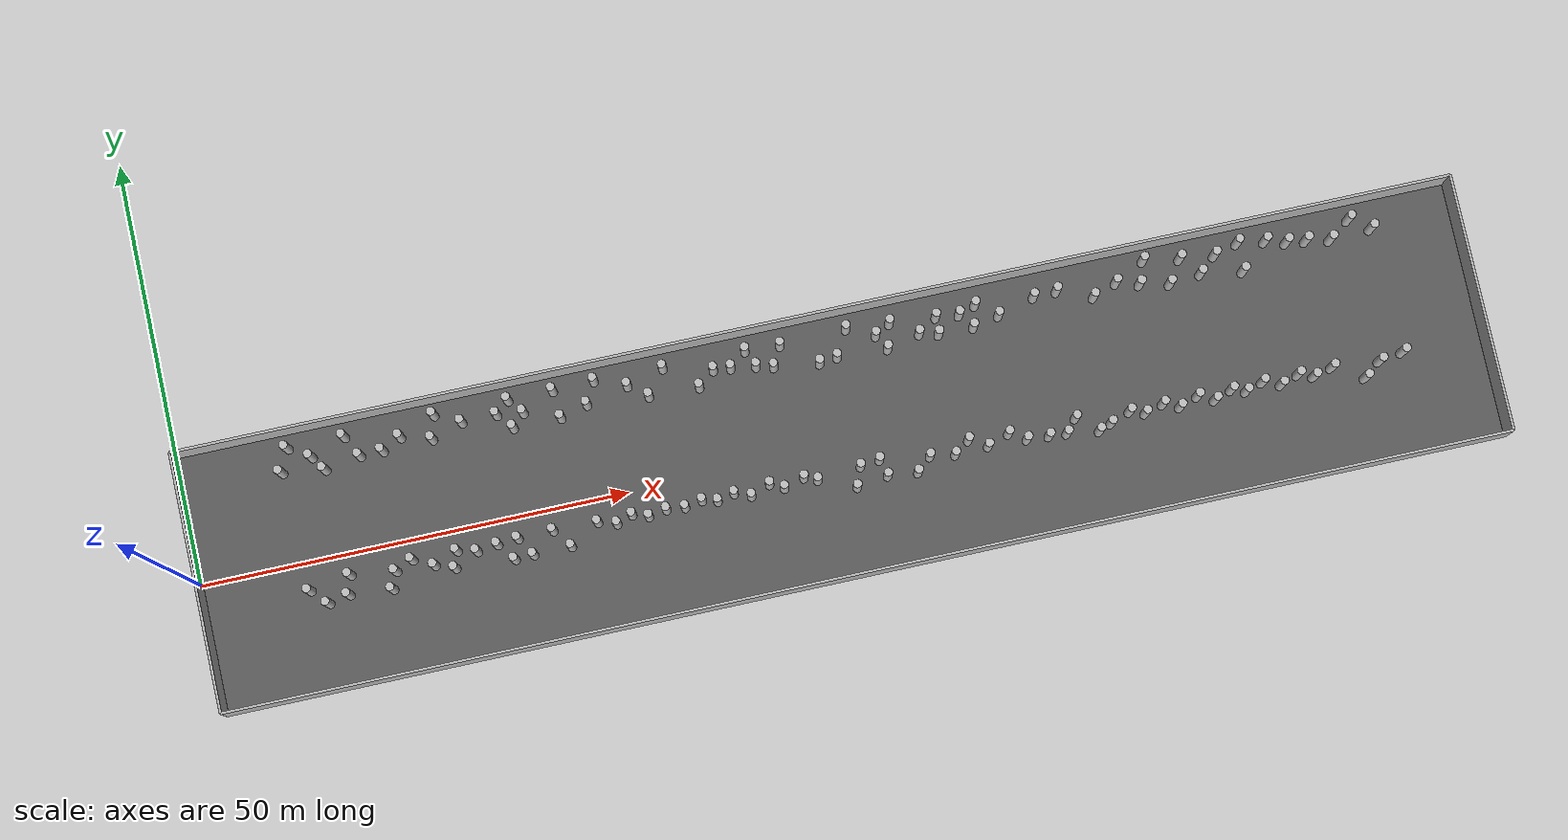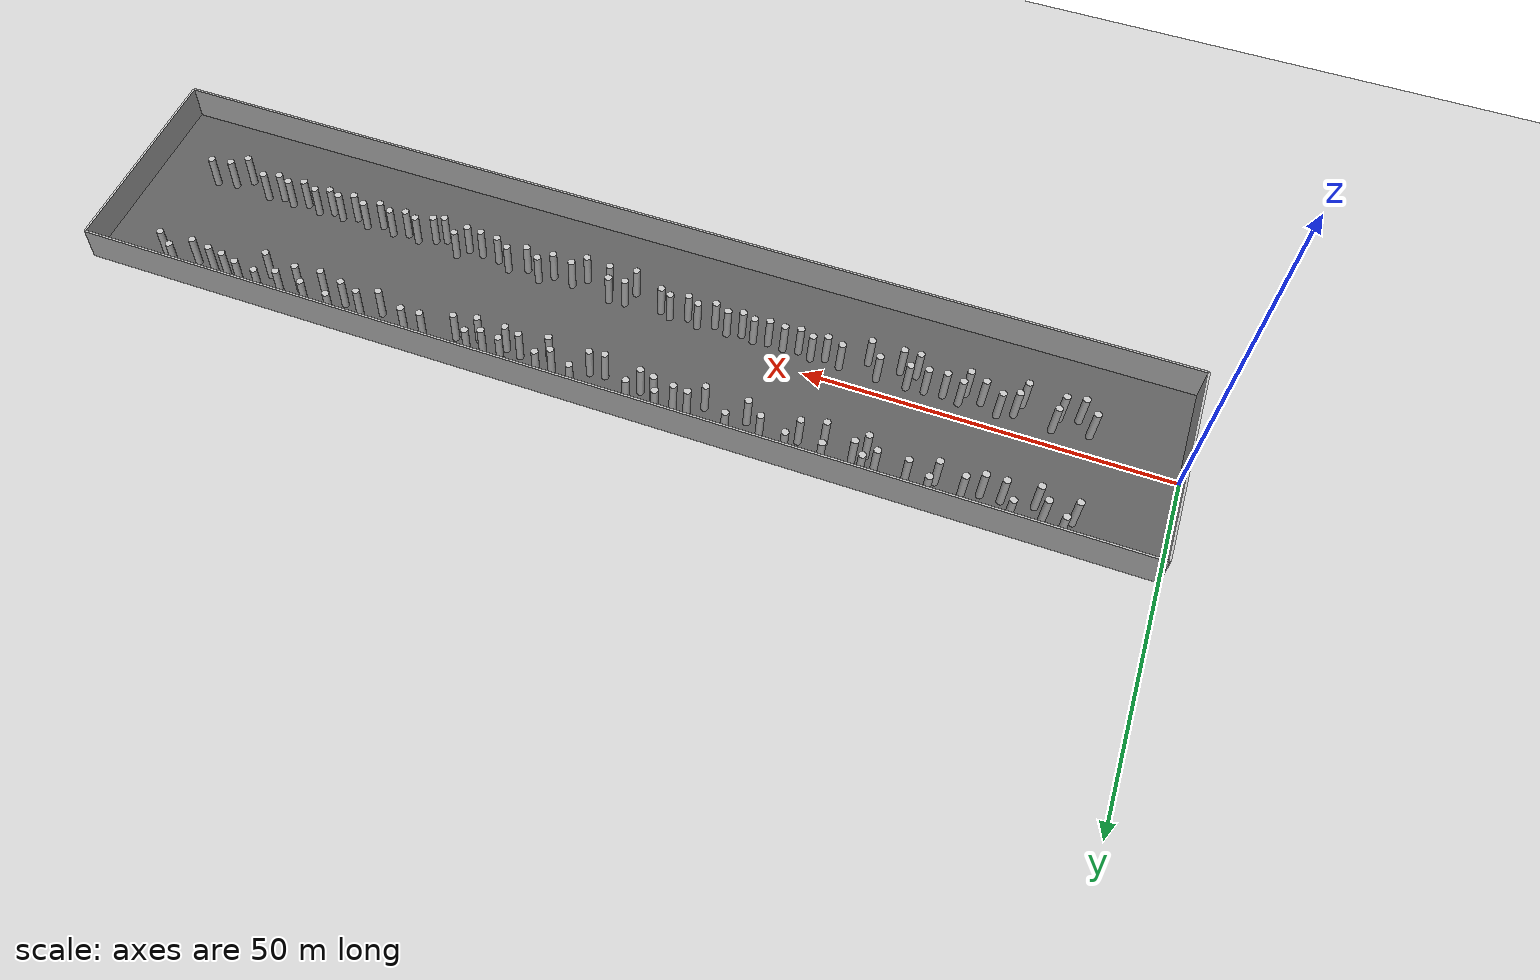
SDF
<?xml version="1.0" ?>
<sdf version="1.5">
  <world name="default">
    <plugin name="gazebo_ros_state" filename="libgazebo_ros_state.so">
      <ros>
        <namespace>/gazebo</namespace>
      </ros>
      <update_rate>20.0</update_rate>
    </plugin>

    <include><uri>model://sun</uri></include>
    <include><uri>model://ground_plane</uri></include>

    <model name="corridor_floor">
      <static>true</static>
      <pose>75 0 0.01 0 0 0</pose>
      <link name="link">
        <collision name="collision">
          <geometry><box><size>150 30 0.02</size></box></geometry>
        </collision>
        <visual name="visual">
          <geometry><box><size>150 30 0.02</size></box></geometry>
          <material>
            <ambient>0.25 0.25 0.25 1</ambient>
            <diffuse>0.35 0.35 0.35 1</diffuse>
          </material>
        </visual>
      </link>
    </model>

    <physics name="default_physics" default="0" type="ode">
      <gravity>0 0 -9.8066</gravity>
      <ode>
        <solver>
          <type>quick</type>
          <iters>10</iters>
          <sor>1.3</sor>
          <use_dynamic_moi_rescaling>0</use_dynamic_moi_rescaling>
        </solver>
        <constraints>
          <cfm>0</cfm>
          <erp>0.2</erp>
          <contact_max_correcting_vel>100</contact_max_correcting_vel>
          <contact_surface_layer>0.001</contact_surface_layer>
        </constraints>
      </ode>
      <max_step_size>0.004</max_step_size>
      <real_time_factor>1</real_time_factor>
      <real_time_update_rate>250</real_time_update_rate>
      <magnetic_field>6.0e-6 2.3e-5 -4.2e-5</magnetic_field>
    </physics>

    <model name="left_wall">
      <static>true</static>
      <pose>75 15.15 2.5 0 0 0</pose>
      <link name="link">
        <collision name="collision">
          <geometry><box><size>150 0.3 5</size></box></geometry>
        </collision>
        <visual name="visual">
          <geometry><box><size>150 0.3 5</size></box></geometry>
        </visual>
      </link>
    </model>

    <model name="right_wall">
      <static>true</static>
      <pose>75 -15.15 2.5 0 0 0</pose>
      <link name="link">
        <collision name="collision">
          <geometry><box><size>150 0.3 5</size></box></geometry>
        </collision>
        <visual name="visual">
          <geometry><box><size>150 0.3 5</size></box></geometry>
        </visual>
      </link>
    </model>

    <model name="start_wall">
      <static>true</static>
      <pose>0 0 2.5 0 0 0</pose>
      <link name="link">
        <collision name="collision">
          <geometry><box><size>0.3 30.3 5</size></box></geometry>
        </collision>
        <visual name="visual">
          <geometry><box><size>0.3 30.3 5</size></box></geometry>
        </visual>
      </link>
    </model>

    <model name="end_wall">
      <static>true</static>
      <pose>150 0 2.5 0 0 0</pose>
      <link name="link">
        <collision name="collision">
          <geometry><box><size>0.3 30.3 5</size></box></geometry>
        </collision>
        <visual name="visual">
          <geometry><box><size>0.3 30.3 5</size></box></geometry>
        </visual>
      </link>
    </model>

    <include><name>cylinder_000</name><uri>model://cylinder_r05_h5</uri><pose>22.201 -3.255 2.5 0 0 0</pose></include>
    <include><name>cylinder_001</name><uri>model://cylinder_r05_h5</uri><pose>26.669 -3.564 2.5 0 0 0</pose></include>
    <include><name>cylinder_002</name><uri>model://cylinder_r05_h5</uri><pose>28.898 -4.371 2.5 0 0 0</pose></include>
    <include><name>cylinder_003</name><uri>model://cylinder_r05_h5</uri><pose>21.467 -5.199 2.5 0 0 0</pose></include>
    <include><name>cylinder_004</name><uri>model://cylinder_r05_h5</uri><pose>29.455 -2.450 2.5 0 0 0</pose></include>
    <include><name>cylinder_005</name><uri>model://cylinder_r05_h5</uri><pose>40.662 -2.543 2.5 0 0 0</pose></include>
    <include><name>cylinder_006</name><uri>model://cylinder_r05_h5</uri><pose>24.269 -2.384 2.5 0 0 0</pose></include>
    <include><name>cylinder_007</name><uri>model://cylinder_r05_h5</uri><pose>17.016 -2.555 2.5 0 0 0</pose></include>
    <include><name>cylinder_008</name><uri>model://cylinder_r05_h5</uri><pose>35.757 -4.831 2.5 0 0 0</pose></include>
    <include><name>cylinder_009</name><uri>model://cylinder_r05_h5</uri><pose>37.948 -4.775 2.5 0 0 0</pose></include>
    <include><name>cylinder_010</name><uri>model://cylinder_r05_h5</uri><pose>34.152 -2.747 2.5 0 0 0</pose></include>
    <include><name>cylinder_011</name><uri>model://cylinder_r05_h5</uri><pose>31.696 -3.010 2.5 0 0 0</pose></include>
    <include><name>cylinder_012</name><uri>model://cylinder_r05_h5</uri><pose>36.568 -2.567 2.5 0 0 0</pose></include>
    <include><name>cylinder_013</name><uri>model://cylinder_r05_h5</uri><pose>42.361 -4.770 2.5 0 0 0</pose></include>
    <include><name>cylinder_014</name><uri>model://cylinder_r05_h5</uri><pose>16.454 -4.746 2.5 0 0 0</pose></include>
    <include><name>cylinder_015</name><uri>model://cylinder_r05_h5</uri><pose>47.982 -3.334 2.5 0 0 0</pose></include>
    <include><name>cylinder_016</name><uri>model://cylinder_r05_h5</uri><pose>45.864 -2.721 2.5 0 0 0</pose></include>
    <include><name>cylinder_017</name><uri>model://cylinder_r05_h5</uri><pose>51.720 -3.310 2.5 0 0 0</pose></include>
    <include><name>cylinder_018</name><uri>model://cylinder_r05_h5</uri><pose>49.876 -2.699 2.5 0 0 0</pose></include>
    <include><name>cylinder_019</name><uri>model://cylinder_r05_h5</uri><pose>55.985 -3.161 2.5 0 0 0</pose></include>
    <include><name>cylinder_020</name><uri>model://cylinder_r05_h5</uri><pose>53.826 -2.949 2.5 0 0 0</pose></include>
    <include><name>cylinder_021</name><uri>model://cylinder_r05_h5</uri><pose>59.768 -3.277 2.5 0 0 0</pose></include>
    <include><name>cylinder_022</name><uri>model://cylinder_r05_h5</uri><pose>58.021 -2.795 2.5 0 0 0</pose></include>
    <include><name>cylinder_023</name><uri>model://cylinder_r05_h5</uri><pose>63.673 -3.499 2.5 0 0 0</pose></include>
    <include><name>cylinder_024</name><uri>model://cylinder_r05_h5</uri><pose>61.768 -2.795 2.5 0 0 0</pose></include>
    <include><name>cylinder_025</name><uri>model://cylinder_r05_h5</uri><pose>67.560 -3.420 2.5 0 0 0</pose></include>
    <include><name>cylinder_026</name><uri>model://cylinder_r05_h5</uri><pose>65.974 -2.629 2.5 0 0 0</pose></include>
    <include><name>cylinder_027</name><uri>model://cylinder_r05_h5</uri><pose>71.468 -3.367 2.5 0 0 0</pose></include>
    <include><name>cylinder_028</name><uri>model://cylinder_r05_h5</uri><pose>69.985 -2.728 2.5 0 0 0</pose></include>
    <include><name>cylinder_029</name><uri>model://cylinder_r05_h5</uri><pose>87.506 -3.854 2.5 0 0 0</pose></include>
    <include><name>cylinder_030</name><uri>model://cylinder_r05_h5</uri><pose>98.486 -4.079 2.5 0 0 0</pose></include>
    <include><name>cylinder_031</name><uri>model://cylinder_r05_h5</uri><pose>91.414 -3.730 2.5 0 0 0</pose></include>
    <include><name>cylinder_032</name><uri>model://cylinder_r05_h5</uri><pose>76.597 -2.854 2.5 0 0 0</pose></include>
    <include><name>cylinder_033</name><uri>model://cylinder_r05_h5</uri><pose>84.614 -3.424 2.5 0 0 0</pose></include>
    <include><name>cylinder_034</name><uri>model://cylinder_r05_h5</uri><pose>78.876 -2.594 2.5 0 0 0</pose></include>
    <include><name>cylinder_035</name><uri>model://cylinder_r05_h5</uri><pose>95.930 -3.903 2.5 0 0 0</pose></include>
    <include><name>cylinder_036</name><uri>model://cylinder_r05_h5</uri><pose>79.424 -4.576 2.5 0 0 0</pose></include>
    <include><name>cylinder_037</name><uri>model://cylinder_r05_h5</uri><pose>100.566 -4.216 2.5 0 0 0</pose></include>
    <include><name>cylinder_038</name><uri>model://cylinder_r05_h5</uri><pose>104.290 -4.738 2.5 0 0 0</pose></include>
    <include><name>cylinder_039</name><uri>model://cylinder_r05_h5</uri><pose>82.905 -4.950 2.5 0 0 0</pose></include>
    <include><name>cylinder_040</name><uri>model://cylinder_r05_h5</uri><pose>75.725 -5.107 2.5 0 0 0</pose></include>
    <include><name>cylinder_041</name><uri>model://cylinder_r05_h5</uri><pose>101.899 -2.703 2.5 0 0 0</pose></include>
    <include><name>cylinder_042</name><uri>model://cylinder_r05_h5</uri><pose>89.330 -2.552 2.5 0 0 0</pose></include>
    <include><name>cylinder_043</name><uri>model://cylinder_r05_h5</uri><pose>94.004 -2.812 2.5 0 0 0</pose></include>
    <include><name>cylinder_044</name><uri>model://cylinder_r05_h5</uri><pose>105.768 -4.174 2.5 0 0 0</pose></include>
    <include><name>cylinder_045</name><uri>model://cylinder_r05_h5</uri><pose>108.154 -3.298 2.5 0 0 0</pose></include>
    <include><name>cylinder_046</name><uri>model://cylinder_r05_h5</uri><pose>109.887 -3.865 2.5 0 0 0</pose></include>
    <include><name>cylinder_047</name><uri>model://cylinder_r05_h5</uri><pose>112.074 -3.265 2.5 0 0 0</pose></include>
    <include><name>cylinder_048</name><uri>model://cylinder_r05_h5</uri><pose>113.933 -4.022 2.5 0 0 0</pose></include>
    <include><name>cylinder_049</name><uri>model://cylinder_r05_h5</uri><pose>116.167 -3.234 2.5 0 0 0</pose></include>
    <include><name>cylinder_050</name><uri>model://cylinder_r05_h5</uri><pose>118.044 -4.095 2.5 0 0 0</pose></include>
    <include><name>cylinder_051</name><uri>model://cylinder_r05_h5</uri><pose>120.127 -3.362 2.5 0 0 0</pose></include>
    <include><name>cylinder_052</name><uri>model://cylinder_r05_h5</uri><pose>121.755 -3.899 2.5 0 0 0</pose></include>
    <include><name>cylinder_053</name><uri>model://cylinder_r05_h5</uri><pose>123.825 -3.254 2.5 0 0 0</pose></include>
    <include><name>cylinder_054</name><uri>model://cylinder_r05_h5</uri><pose>125.897 -4.000 2.5 0 0 0</pose></include>
    <include><name>cylinder_055</name><uri>model://cylinder_r05_h5</uri><pose>128.036 -3.280 2.5 0 0 0</pose></include>
    <include><name>cylinder_056</name><uri>model://cylinder_r05_h5</uri><pose>129.769 -3.873 2.5 0 0 0</pose></include>
    <include><name>cylinder_057</name><uri>model://cylinder_r05_h5</uri><pose>132.023 -3.267 2.5 0 0 0</pose></include>
    <include><name>cylinder_058</name><uri>model://cylinder_r05_h5</uri><pose>12.176 -3.356 2.5 0 0 0</pose></include>
    <include><name>cylinder_059</name><uri>model://cylinder_r05_h5</uri><pose>13.981 -5.228 2.5 0 0 0</pose></include>
    <include><name>cylinder_060</name><uri>model://cylinder_r05_h5</uri><pose>137.566 -3.758 2.5 0 0 0</pose></include>
    <include><name>cylinder_061</name><uri>model://cylinder_r05_h5</uri><pose>140.388 -3.279 2.5 0 0 0</pose></include>
    <include><name>cylinder_062</name><uri>model://cylinder_r05_h5</uri><pose>135.542 -5.268 2.5 0 0 0</pose></include>
    <include><name>cylinder_063</name><uri>model://cylinder_r05_h5</uri><pose>64.461 11.462 2.5 0 0 0</pose></include>
    <include><name>cylinder_064</name><uri>model://cylinder_r05_h5</uri><pose>121.815 12.331 2.5 0 0 0</pose></include>
    <include><name>cylinder_065</name><uri>model://cylinder_r05_h5</uri><pose>78.374 13.075 2.5 0 0 0</pose></include>
    <include><name>cylinder_066</name><uri>model://cylinder_r05_h5</uri><pose>92.782 10.111 2.5 0 0 0</pose></include>
    <include><name>cylinder_067</name><uri>model://cylinder_r05_h5</uri><pose>107.108 10.594 2.5 0 0 0</pose></include>
    <include><name>cylinder_068</name><uri>model://cylinder_r05_h5</uri><pose>20.792 10.599 2.5 0 0 0</pose></include>
    <include><name>cylinder_069</name><uri>model://cylinder_r05_h5</uri><pose>109.968 11.637 2.5 0 0 0</pose></include>
    <include><name>cylinder_070</name><uri>model://cylinder_r05_h5</uri><pose>52.416 11.991 2.5 0 0 0</pose></include>
    <include><name>cylinder_071</name><uri>model://cylinder_r05_h5</uri><pose>140.223 11.518 2.5 0 0 0</pose></include>
    <include><name>cylinder_072</name><uri>model://cylinder_r05_h5</uri><pose>116.052 10.179 2.5 0 0 0</pose></include>
    <include><name>cylinder_073</name><uri>model://cylinder_r05_h5</uri><pose>15.313 11.661 2.5 0 0 0</pose></include>
    <include><name>cylinder_074</name><uri>model://cylinder_r05_h5</uri><pose>40.089 11.496 2.5 0 0 0</pose></include>
    <include><name>cylinder_075</name><uri>model://cylinder_r05_h5</uri><pose>130.280 12.030 2.5 0 0 0</pose></include>
    <include><name>cylinder_076</name><uri>model://cylinder_r05_h5</uri><pose>37.043 11.918 2.5 0 0 0</pose></include>
    <include><name>cylinder_077</name><uri>model://cylinder_r05_h5</uri><pose>127.908 12.697 2.5 0 0 0</pose></include>
    <include><name>cylinder_078</name><uri>model://cylinder_r05_h5</uri><pose>70.545 12.798 2.5 0 0 0</pose></include>
    <include><name>cylinder_079</name><uri>model://cylinder_r05_h5</uri><pose>23.439 10.618 2.5 0 0 0</pose></include>
    <include><name>cylinder_080</name><uri>model://cylinder_r05_h5</uri><pose>56.802 13.133 2.5 0 0 0</pose></include>
    <include><name>cylinder_081</name><uri>model://cylinder_r05_h5</uri><pose>29.969 13.428 2.5 0 0 0</pose></include>
    <include><name>cylinder_082</name><uri>model://cylinder_r05_h5</uri><pose>88.797 12.196 2.5 0 0 0</pose></include>
    <include><name>cylinder_083</name><uri>model://cylinder_r05_h5</uri><pose>93.489 12.591 2.5 0 0 0</pose></include>
    <include><name>cylinder_084</name><uri>model://cylinder_r05_h5</uri><pose>60.494 10.066 2.5 0 0 0</pose></include>
    <include><name>cylinder_085</name><uri>model://cylinder_r05_h5</uri><pose>86.521 10.717 2.5 0 0 0</pose></include>
    <include><name>cylinder_086</name><uri>model://cylinder_r05_h5</uri><pose>48.734 13.366 2.5 0 0 0</pose></include>
    <include><name>cylinder_087</name><uri>model://cylinder_r05_h5</uri><pose>91.473 11.878 2.5 0 0 0</pose></include>
    <include><name>cylinder_088</name><uri>model://cylinder_r05_h5</uri><pose>83.408 12.642 2.5 0 0 0</pose></include>
    <include><name>cylinder_089</name><uri>model://cylinder_r05_h5</uri><pose>100.316 12.062 2.5 0 0 0</pose></include>
    <include><name>cylinder_090</name><uri>model://cylinder_r05_h5</uri><pose>74.595 9.827 2.5 0 0 0</pose></include>
    <include><name>cylinder_091</name><uri>model://cylinder_r05_h5</uri><pose>54.600 10.284 2.5 0 0 0</pose></include>
    <include><name>cylinder_092</name><uri>model://cylinder_r05_h5</uri><pose>29.272 10.734 2.5 0 0 0</pose></include>
    <include><name>cylinder_093</name><uri>model://cylinder_r05_h5</uri><pose>82.606 9.779 2.5 0 0 0</pose></include>
    <include><name>cylinder_094</name><uri>model://cylinder_r05_h5</uri><pose>135.336 11.269 2.5 0 0 0</pose></include>
    <include><name>cylinder_095</name><uri>model://cylinder_r05_h5</uri><pose>88.696 10.189 2.5 0 0 0</pose></include>
    <include><name>cylinder_096</name><uri>model://cylinder_r05_h5</uri><pose>43.886 13.263 2.5 0 0 0</pose></include>
    <include><name>cylinder_097</name><uri>model://cylinder_r05_h5</uri><pose>32.954 11.906 2.5 0 0 0</pose></include>
    <include><name>cylinder_098</name><uri>model://cylinder_r05_h5</uri><pose>25.715 11.765 2.5 0 0 0</pose></include>
    <include><name>cylinder_099</name><uri>model://cylinder_r05_h5</uri><pose>137.909 13.107 2.5 0 0 0</pose></include>
    <include><name>cylinder_100</name><uri>model://cylinder_r05_h5</uri><pose>112.624 10.891 2.5 0 0 0</pose></include>
    <include><name>cylinder_101</name><uri>model://cylinder_r05_h5</uri><pose>66.467 13.056 2.5 0 0 0</pose></include>
    <include><name>cylinder_102</name><uri>model://cylinder_r05_h5</uri><pose>132.542 11.740 2.5 0 0 0</pose></include>
    <include><name>cylinder_103</name><uri>model://cylinder_r05_h5</uri><pose>67.342 11.036 2.5 0 0 0</pose></include>
    <include><name>cylinder_104</name><uri>model://cylinder_r05_h5</uri><pose>124.640 9.833 2.5 0 0 0</pose></include>
    <include><name>cylinder_105</name><uri>model://cylinder_r05_h5</uri><pose>62.453 11.668 2.5 0 0 0</pose></include>
    <include><name>cylinder_106</name><uri>model://cylinder_r05_h5</uri><pose>44.201 10.005 2.5 0 0 0</pose></include>
    <include><name>cylinder_107</name><uri>model://cylinder_r05_h5</uri><pose>38.625 10.039 2.5 0 0 0</pose></include>
    <include><name>cylinder_108</name><uri>model://cylinder_r05_h5</uri><pose>113.596 13.478 2.5 0 0 0</pose></include>
    <include><name>cylinder_109</name><uri>model://cylinder_r05_h5</uri><pose>119.780 10.577 2.5 0 0 0</pose></include>
    <include><name>cylinder_110</name><uri>model://cylinder_r05_h5</uri><pose>95.918 10.836 2.5 0 0 0</pose></include>
    <include><name>cylinder_111</name><uri>model://cylinder_r05_h5</uri><pose>12.793 13.252 2.5 0 0 0</pose></include>
    <include><name>cylinder_112</name><uri>model://cylinder_r05_h5</uri><pose>124.711 13.162 2.5 0 0 0</pose></include>
    <include><name>cylinder_113</name><uri>model://cylinder_r05_h5</uri><pose>76.695 10.084 2.5 0 0 0</pose></include>
    <include><name>cylinder_114</name><uri>model://cylinder_r05_h5</uri><pose>16.564 9.913 2.5 0 0 0</pose></include>
    <include><name>cylinder_115</name><uri>model://cylinder_r05_h5</uri><pose>103.056 12.165 2.5 0 0 0</pose></include>
    <include><name>cylinder_116</name><uri>model://cylinder_r05_h5</uri><pose>69.320 10.535 2.5 0 0 0</pose></include>
    <include><name>cylinder_117</name><uri>model://cylinder_r05_h5</uri><pose>117.813 12.804 2.5 0 0 0</pose></include>
    <include><name>cylinder_118</name><uri>model://cylinder_r05_h5</uri><pose>11.637 10.606 2.5 0 0 0</pose></include>
    <include><name>cylinder_119</name><uri>model://cylinder_r05_h5</uri><pose>47.425 10.866 2.5 0 0 0</pose></include>
    <include><name>cylinder_120</name><uri>model://cylinder_r05_h5</uri><pose>81.586 11.599 2.5 0 0 0</pose></include>
    <include><name>cylinder_121</name><uri>model://cylinder_r05_h5</uri><pose>19.420 13.168 2.5 0 0 0</pose></include>
    <include><name>cylinder_122</name><uri>model://cylinder_r05_h5</uri><pose>38.631 13.274 2.5 0 0 0</pose></include>

  </world>
</sdf>

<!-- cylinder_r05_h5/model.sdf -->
<sdf version="1.5">
  <model name="cylinder_r05_h5">
    <static>true</static>
    <link name="link">
      <collision name="collision">
        <geometry>
          <cylinder>
            <radius>0.5</radius>
            <length>5</length>
          </cylinder>
        </geometry>
      </collision>
      <visual name="visual">
        <geometry>
          <cylinder>
            <radius>0.5</radius>
            <length>5</length>
          </cylinder>
        </geometry>
        <material>
          <ambient>0.5 0.5 0.5 1</ambient>
          <diffuse>0.75 0.75 0.75 1</diffuse>
        </material>
      </visual>
    </link>
  </model>
</sdf>
